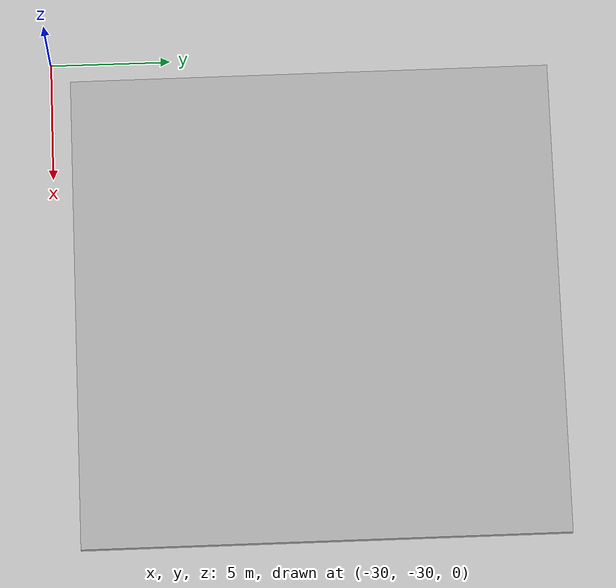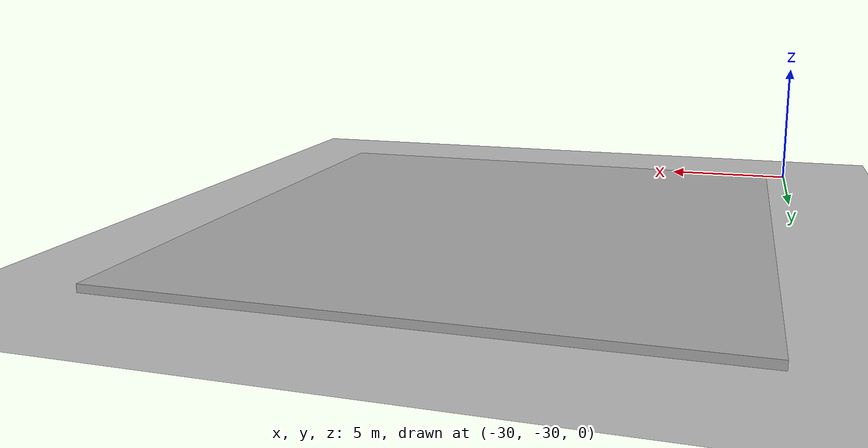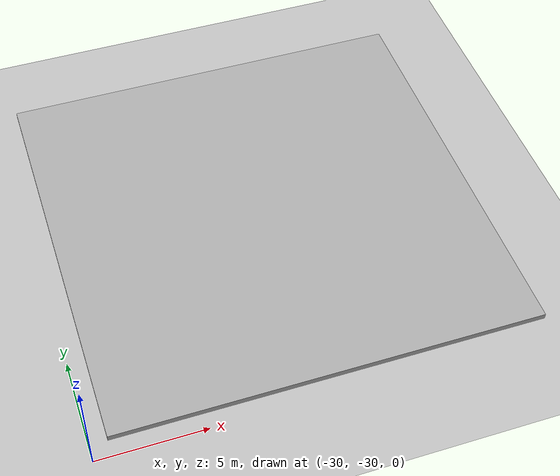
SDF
<sdf version="1.6">
 <world name="default">
  <model name="ground_plane">
   <static>1</static>
   <link name="link">
    <collision name="collision">
     <geometry><plane><normal>0 0 1</normal><size>100 100</size></plane></geometry>
     <surface><friction><ode><mu>100</mu><mu2>50</mu2></ode></friction></surface>
    </collision>
    <visual name="visual">
     <cast_shadows>0</cast_shadows>
     <geometry><plane><normal>0 0 1</normal><size>100 100</size></plane></geometry>
     <material>
      <script><uri>file://media/materials/scripts/gazebo.material</uri><name>Gazebo/Grey</name></script>
     </material>
    </visual>
   </link>
  </model>
  <model name="box_clone_5">
   <static>1</static>
   <pose>-19.1918 -19.1964 0 0 -0 0</pose>
   <link name="box">
    <visual name="visual"><geometry><box><size>20 20 0.5</size></box></geometry></visual>
    <collision name="visual">
     <geometry><box><size>20 20 0.5</size></box></geometry>
     <surface><friction><ode><mu>0.2</mu><mu2>0.2</mu2></ode></friction></surface>
    </collision>
   </link>
  </model>
 </world>
</sdf>
